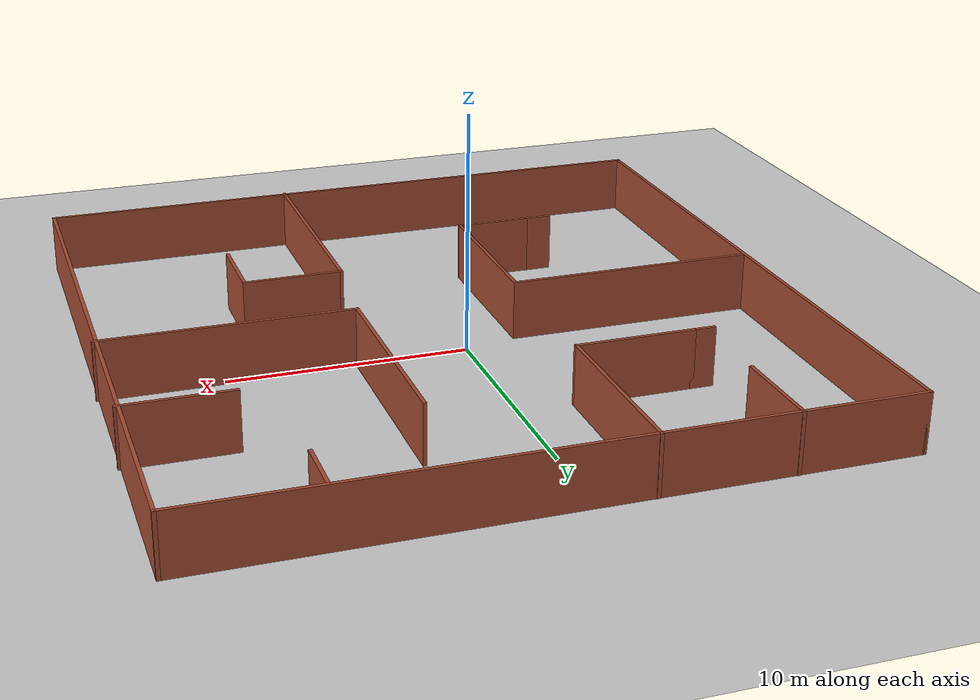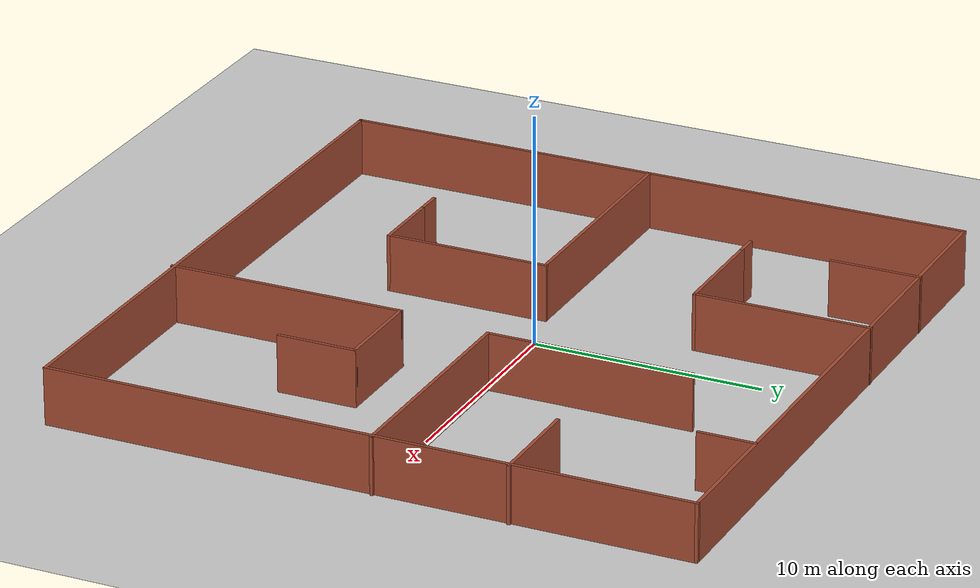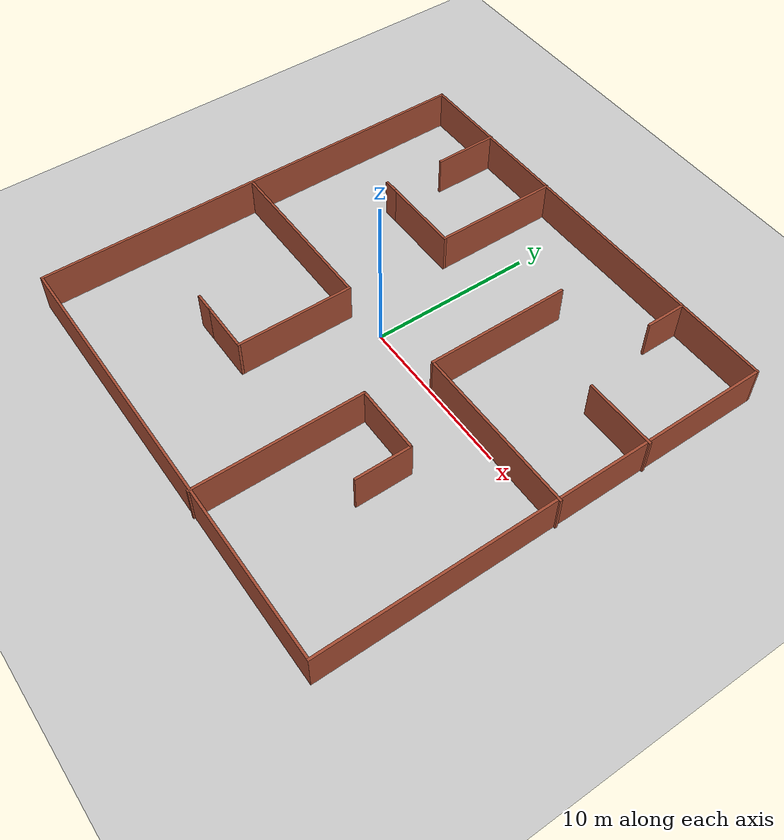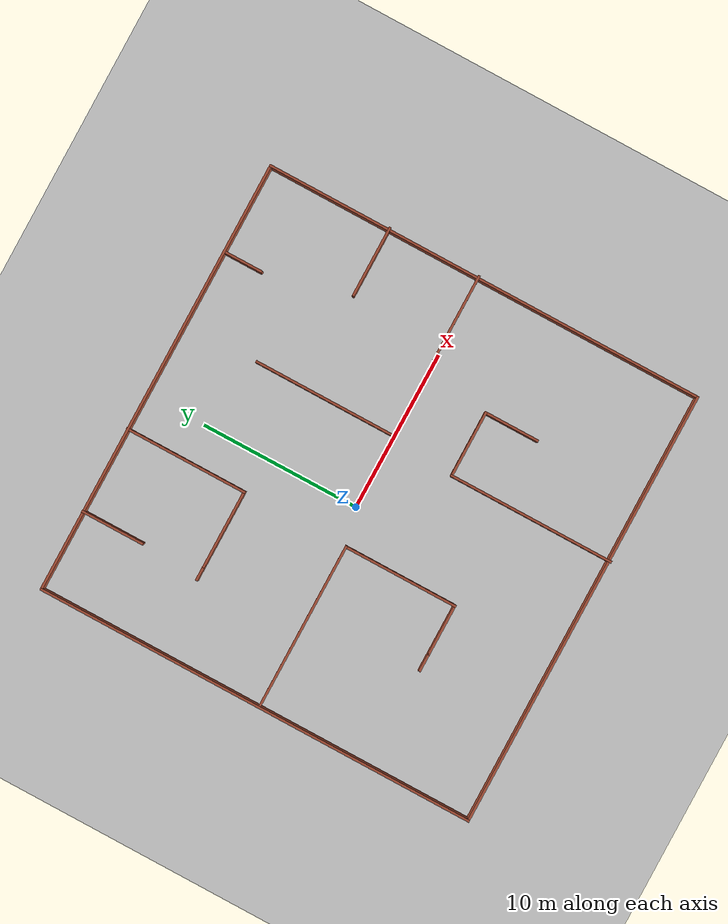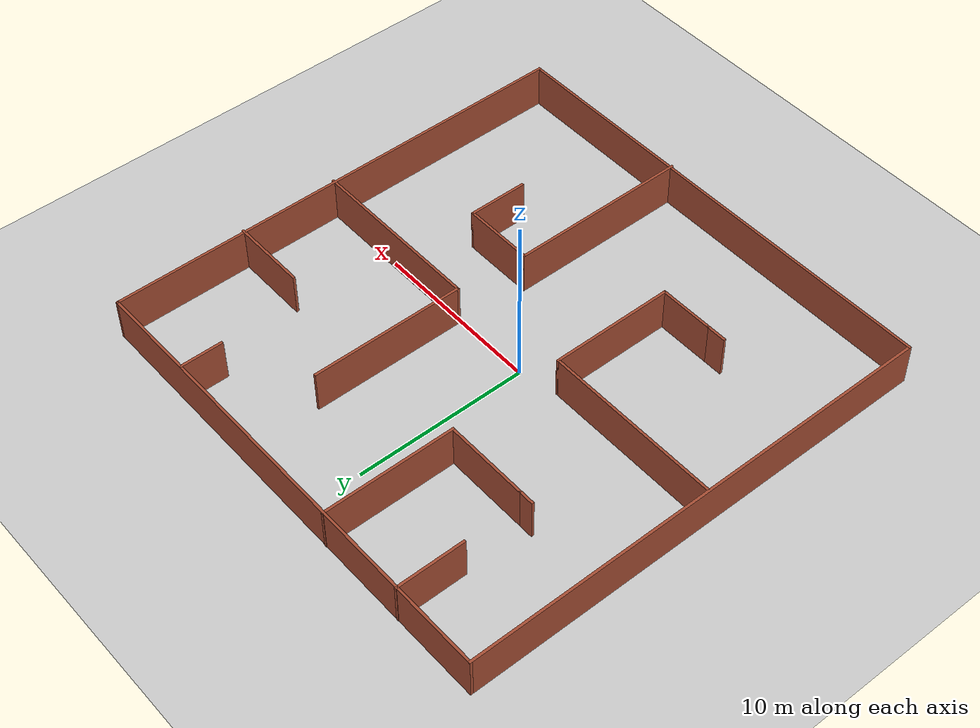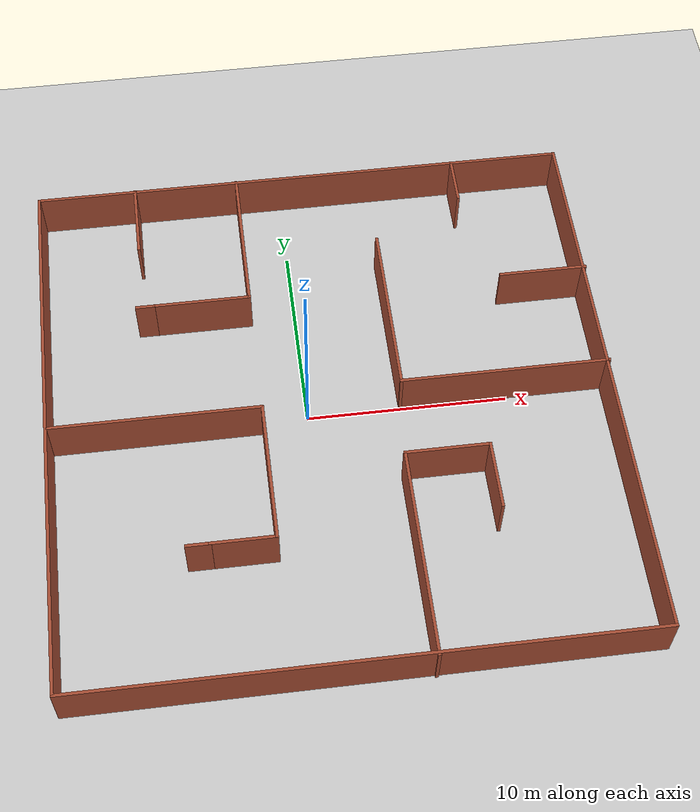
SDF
<sdf version="1.6">
 <world name="default">
  <light name="sun" type="directional">
   <pose>0 0 10 0 -0 0</pose>
   <diffuse>0.8 0.8 0.8 1</diffuse>
   <specular>0.1 0.1 0.1 1</specular>
   <attenuation>
    <range>1000</range>
    <constant>0.9</constant>
    <linear>0.01</linear>
    <quadratic>0.001</quadratic>
   </attenuation>
   <direction>-0.5 0.5 -1</direction>
  </light>
  <model name="ground_plane">
   <static>1</static>
   <link name="link">
    <collision name="collision">
     <geometry><plane><normal>0 0 1</normal><size>100 100</size></plane></geometry>
     <surface><friction><ode><mu>100</mu><mu2>50</mu2></ode></friction></surface>
    </collision>
    <visual name="visual">
     <cast_shadows>0</cast_shadows>
     <geometry><plane><normal>0 0 1</normal><size>100 100</size></plane></geometry>
     <material>
      <script><uri>file://media/materials/scripts/gazebo.material</uri><name>Gazebo/Grey</name></script>
     </material>
    </visual>
   </link>
  </model>
  <gravity>0 0 -9.8</gravity>
  <magnetic_field>6e-06 2.3e-05 -4.2e-05</magnetic_field>
  <atmosphere type="adiabatic"/>
  <physics name="default_physics" default="0" type="ode">
   <max_step_size>0.001</max_step_size>
   <real_time_factor>1</real_time_factor>
   <real_time_update_rate>1000</real_time_update_rate>
  </physics>
  <scene><ambient>0.4 0.4 0.4 1</ambient><background>0.7 0.7 0.7 1</background><shadows>1</shadows></scene>
  <spherical_coordinates>
   <surface_model>EARTH_WGS84</surface_model>
   <latitude_deg>0</latitude_deg>
   <longitude_deg>0</longitude_deg>
   <elevation>0</elevation>
   <heading_deg>0</heading_deg>
  </spherical_coordinates>
  <model name="room_rf">
   <pose>1.13693 -0.31413 0 0 -0 0</pose>
   <link name="Wall_0">
    <collision name="Wall_0_Collision">
     <geometry><box><size>28 0.15 2.5</size></box></geometry>
     <pose>0 0 1.25 0 -0 0</pose>
    </collision>
    <visual name="Wall_0_Visual">
     <pose>0 0 1.25 0 -0 0</pose>
     <geometry><box><size>28 0.15 2.5</size></box></geometry>
     <material>
      <script><uri>file://media/materials/scripts/gazebo.material</uri><name>Gazebo/Bricks</name></script>
      <ambient>1 1 1 1</ambient>
     </material>
    </visual>
    <pose>-13.8516 0.036134 0 0 0 -1.5708</pose>
   </link>
   <link name="Wall_10">
    <collision name="Wall_10_Collision">
     <geometry><box><size>4 0.15 2.5</size></box></geometry>
     <pose>0 0 1.25 0 -0 0</pose>
    </collision>
    <visual name="Wall_10_Visual">
     <pose>0 0 1.25 0 -0 0</pose>
     <geometry><box><size>4 0.15 2.5</size></box></geometry>
     <material>
      <script><uri>file://media/materials/scripts/gazebo.material</uri><name>Gazebo/Bricks</name></script>
      <ambient>1 1 1 1</ambient>
     </material>
    </visual>
    <pose>-8.79545 12.0593 0 0 0 -1.5708</pose>
   </link>
   <link name="Wall_12">
    <collision name="Wall_12_Collision">
     <geometry><box><size>10.5 0.15 2.5</size></box></geometry>
     <pose>0 0 1.25 0 -0 0</pose>
    </collision>
    <visual name="Wall_12_Visual">
     <pose>0 0 1.25 0 -0 0</pose>
     <geometry><box><size>10.5 0.15 2.5</size></box></geometry>
     <material>
      <script><uri>file://media/materials/scripts/gazebo.material</uri><name>Gazebo/Bricks</name></script>
      <ambient>1 1 1 1</ambient>
     </material>
    </visual>
    <pose>-8.57063 -0.247509 0 0 -0 0</pose>
   </link>
   <link name="Wall_13">
    <collision name="Wall_13_Collision">
     <geometry><box><size>7.25 0.15 2.5</size></box></geometry>
     <pose>0 0 1.25 0 -0 0</pose>
    </collision>
    <visual name="Wall_13_Visual">
     <pose>0 0 1.25 0 -0 0</pose>
     <geometry><box><size>7.25 0.15 2.5</size></box></geometry>
     <material>
      <script><uri>file://media/materials/scripts/gazebo.material</uri><name>Gazebo/Bricks</name></script>
      <ambient>1 1 1 1</ambient>
     </material>
    </visual>
    <pose>-3.39563 -3.79751 0 0 0 -1.5708</pose>
   </link>
   <link name="Wall_14">
    <collision name="Wall_14_Collision">
     <geometry><box><size>3.25 0.15 2.5</size></box></geometry>
     <pose>0 0 1.25 0 -0 0</pose>
    </collision>
    <visual name="Wall_14_Visual">
     <pose>0 0 1.25 0 -0 0</pose>
     <geometry><box><size>3.25 0.15 2.5</size></box></geometry>
     <material>
      <script><uri>file://media/materials/scripts/gazebo.material</uri><name>Gazebo/Bricks</name></script>
      <ambient>1 1 1 1</ambient>
     </material>
    </visual>
    <pose>-4.94563 -7.34751 0 0 -0 3.14159</pose>
   </link>
   <link name="Wall_15">
    <collision name="Wall_15_Collision">
     <geometry><box><size>1.25 0.15 2.5</size></box></geometry>
     <pose>0 0 1.25 0 -0 0</pose>
    </collision>
    <visual name="Wall_15_Visual">
     <pose>0 0 1.25 0 -0 0</pose>
     <geometry><box><size>1.25 0.15 2.5</size></box></geometry>
     <material>
      <script><uri>file://media/materials/scripts/gazebo.material</uri><name>Gazebo/Bricks</name></script>
      <ambient>1 1 1 1</ambient>
     </material>
    </visual>
    <pose>-7.04563 -7.34751 0 0 -0 3.14159</pose>
   </link>
   <link name="Wall_17">
    <collision name="Wall_17_Collision">
     <geometry><box><size>10.5 0.15 2.5</size></box></geometry>
     <pose>0 0 1.25 0 -0 0</pose>
    </collision>
    <visual name="Wall_17_Visual">
     <pose>0 0 1.25 0 -0 0</pose>
     <geometry><box><size>10.5 0.15 2.5</size></box></geometry>
     <material>
      <script><uri>file://media/materials/scripts/gazebo.material</uri><name>Gazebo/Bricks</name></script>
      <ambient>1 1 1 1</ambient>
     </material>
    </visual>
    <pose>3.08498 -8.80926 0 0 -0 1.5708</pose>
   </link>
   <link name="Wall_18">
    <collision name="Wall_18_Collision">
     <geometry><box><size>4.25 0.15 2.5</size></box></geometry>
     <pose>0 0 1.25 0 -0 0</pose>
    </collision>
    <visual name="Wall_18_Visual">
     <pose>0 0 1.25 0 -0 0</pose>
     <geometry><box><size>4.25 0.15 2.5</size></box></geometry>
     <material>
      <script><uri>file://media/materials/scripts/gazebo.material</uri><name>Gazebo/Bricks</name></script>
      <ambient>1 1 1 1</ambient>
     </material>
    </visual>
    <pose>5.13498 -3.63426 0 0 -0 0</pose>
   </link>
   <link name="Wall_19">
    <collision name="Wall_19_Collision">
     <geometry><box><size>3.5 0.15 2.5</size></box></geometry>
     <pose>0 0 1.25 0 -0 0</pose>
    </collision>
    <visual name="Wall_19_Visual">
     <pose>0 0 1.25 0 -0 0</pose>
     <geometry><box><size>3.5 0.15 2.5</size></box></geometry>
     <material>
      <script><uri>file://media/materials/scripts/gazebo.material</uri><name>Gazebo/Bricks</name></script>
      <ambient>1 1 1 1</ambient>
     </material>
    </visual>
    <pose>7.18498 -5.30926 0 0 0 -1.5708</pose>
   </link>
   <link name="Wall_2">
    <collision name="Wall_2_Collision">
     <geometry><box><size>27.75 0.15 2.5</size></box></geometry>
     <pose>0 0 1.25 0 -0 0</pose>
    </collision>
    <visual name="Wall_2_Visual">
     <pose>0 0 1.25 0 -0 0</pose>
     <geometry><box><size>27.75 0.15 2.5</size></box></geometry>
     <material>
      <script><uri>file://media/materials/scripts/gazebo.material</uri><name>Gazebo/Bricks</name></script>
      <ambient>1 1 1 1</ambient>
     </material>
    </visual>
    <pose>-0.051626 -13.8889 0 0 -0 0</pose>
   </link>
   <link name="Wall_21">
    <collision name="Wall_21_Collision">
     <geometry><box><size>10.5 0.15 2.5</size></box></geometry>
     <pose>0 0 1.25 0 -0 0</pose>
    </collision>
    <visual name="Wall_21_Visual">
     <pose>0 0 1.25 0 -0 0</pose>
     <geometry><box><size>10.5 0.15 2.5</size></box></geometry>
     <material>
      <script><uri>file://media/materials/scripts/gazebo.material</uri><name>Gazebo/Bricks</name></script>
      <ambient>1 1 1 1</ambient>
     </material>
    </visual>
    <pose>8.67663 0.433141 0 0 -0 3.14159</pose>
   </link>
   <link name="Wall_22">
    <collision name="Wall_22_Collision">
     <geometry><box><size>9 0.15 2.5</size></box></geometry>
     <pose>0 0 1.25 0 -0 0</pose>
    </collision>
    <visual name="Wall_22_Visual">
     <pose>0 0 1.25 0 -0 0</pose>
     <geometry><box><size>9 0.15 2.5</size></box></geometry>
     <material>
      <script><uri>file://media/materials/scripts/gazebo.material</uri><name>Gazebo/Bricks</name></script>
      <ambient>1 1 1 1</ambient>
     </material>
    </visual>
    <pose>3.50163 4.85814 0 0 -0 1.5708</pose>
   </link>
   <link name="Wall_24">
    <collision name="Wall_24_Collision">
     <geometry><box><size>4.5 0.15 2.5</size></box></geometry>
     <pose>0 0 1.25 0 -0 0</pose>
    </collision>
    <visual name="Wall_24_Visual">
     <pose>0 0 1.25 0 -0 0</pose>
     <geometry><box><size>4.5 0.15 2.5</size></box></geometry>
     <material>
      <script><uri>file://media/materials/scripts/gazebo.material</uri><name>Gazebo/Bricks</name></script>
      <ambient>1 1 1 1</ambient>
     </material>
    </visual>
    <pose>11.6766 6.2496 0 0 -0 3.14159</pose>
   </link>
   <link name="Wall_26">
    <collision name="Wall_26_Collision">
     <geometry><box><size>2.5 0.15 2.5</size></box></geometry>
     <pose>0 0 1.25 0 -0 0</pose>
    </collision>
    <visual name="Wall_26_Visual">
     <pose>0 0 1.25 0 -0 0</pose>
     <geometry><box><size>2.5 0.15 2.5</size></box></geometry>
     <material>
      <script><uri>file://media/materials/scripts/gazebo.material</uri><name>Gazebo/Bricks</name></script>
      <ambient>1 1 1 1</ambient>
     </material>
    </visual>
    <pose>8.15892 12.7474 0 0 0 -1.5708</pose>
   </link>
   <link name="Wall_3">
    <collision name="Wall_3_Collision">
     <geometry><box><size>28 0.15 2.5</size></box></geometry>
     <pose>0 0 1.25 0 -0 0</pose>
    </collision>
    <visual name="Wall_3_Visual">
     <pose>0 0 1.25 0 -0 0</pose>
     <geometry><box><size>28 0.15 2.5</size></box></geometry>
     <material>
      <script><uri>file://media/materials/scripts/gazebo.material</uri><name>Gazebo/Bricks</name></script>
      <ambient>1 1 1 1</ambient>
     </material>
    </visual>
    <pose>13.7484 0.036134 0 0 -0 1.5708</pose>
   </link>
   <link name="Wall_4">
    <collision name="Wall_4_Collision">
     <geometry><box><size>27.75 0.15 2.5</size></box></geometry>
     <pose>0 0 1.25 0 -0 0</pose>
    </collision>
    <visual name="Wall_4_Visual">
     <pose>0 0 1.25 0 -0 0</pose>
     <geometry><box><size>27.75 0.15 2.5</size></box></geometry>
     <material>
      <script><uri>file://media/materials/scripts/gazebo.material</uri><name>Gazebo/Bricks</name></script>
      <ambient>1 1 1 1</ambient>
     </material>
    </visual>
    <pose>-0.051626 13.9611 0 0 -0 3.14159</pose>
   </link>
   <link name="Wall_6">
    <collision name="Wall_6_Collision">
     <geometry><box><size>7.75 0.15 2.5</size></box></geometry>
     <pose>0 0 1.25 0 -0 0</pose>
    </collision>
    <visual name="Wall_6_Visual">
     <pose>0 0 1.25 0 -0 0</pose>
     <geometry><box><size>7.75 0.15 2.5</size></box></geometry>
     <material>
      <script><uri>file://media/materials/scripts/gazebo.material</uri><name>Gazebo/Bricks</name></script>
      <ambient>1 1 1 1</ambient>
     </material>
    </visual>
    <pose>-3.41213 10.1843 0 0 0 -1.5708</pose>
   </link>
   <link name="Wall_7">
    <collision name="Wall_7_Collision">
     <geometry><box><size>5 0.15 2.5</size></box></geometry>
     <pose>0 0 1.25 0 -0 0</pose>
    </collision>
    <visual name="Wall_7_Visual">
     <pose>0 0 1.25 0 -0 0</pose>
     <geometry><box><size>5 0.15 2.5</size></box></geometry>
     <material>
      <script><uri>file://media/materials/scripts/gazebo.material</uri><name>Gazebo/Bricks</name></script>
      <ambient>1 1 1 1</ambient>
     </material>
    </visual>
    <pose>-5.83713 6.38426 0 0 -0 3.14159</pose>
   </link>
   <link name="Wall_8">
    <collision name="Wall_8_Collision">
     <geometry><box><size>1 0.15 2.5</size></box></geometry>
     <pose>0 0 1.25 0 -0 0</pose>
    </collision>
    <visual name="Wall_8_Visual">
     <pose>0 0 1.25 0 -0 0</pose>
     <geometry><box><size>1 0.15 2.5</size></box></geometry>
     <material>
      <script><uri>file://media/materials/scripts/gazebo.material</uri><name>Gazebo/Bricks</name></script>
      <ambient>1 1 1 1</ambient>
     </material>
    </visual>
    <pose>-8.68713 6.38426 0 0 -0 3.14159</pose>
   </link>
   <static>1</static>
  </model>
 </world>
</sdf>
